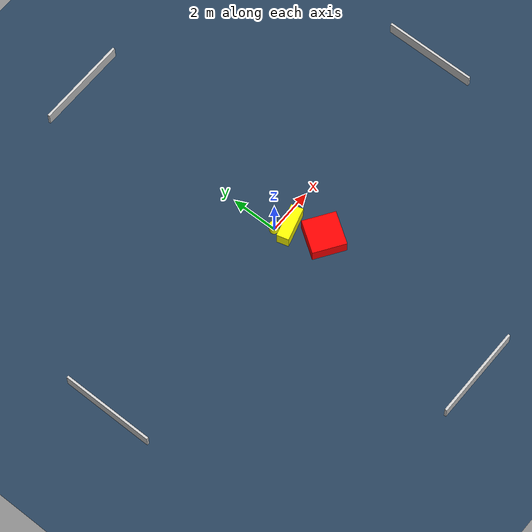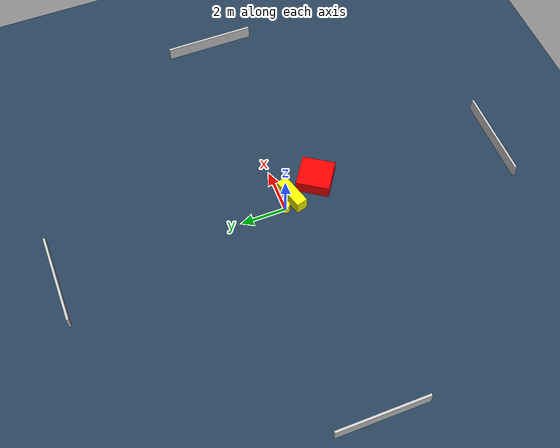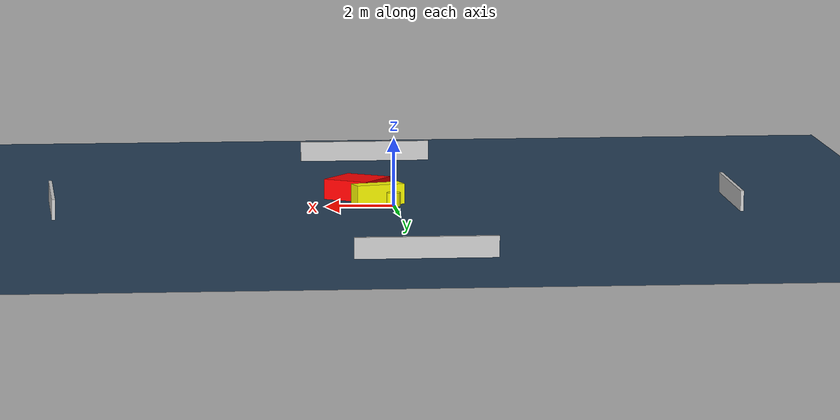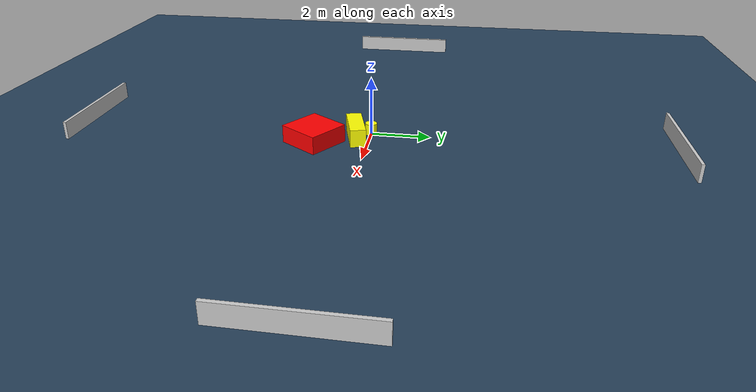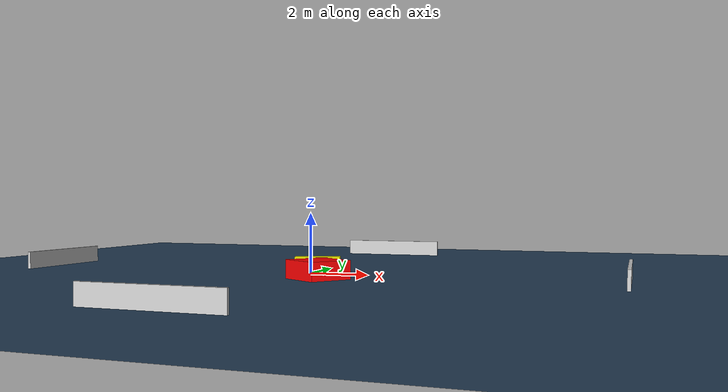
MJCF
<?xml version="1.0" ?>
<mujoco model="generated_environment">
  <option timestep="0.01" integrator="RK4" cone="elliptic"/>
  <default>
    <geom density="1"/>
  </default>
  <asset>
    <texture builtin="gradient" height="3072" name="skybox" rgb1="0.3 0.5 0.7" rgb2="0 0 0" type="skybox" width="512"/>
    <texture builtin="checker" height="300" name="groundplane" rgb1="0.2 0.3 0.4" rgb2="0.1 0.2 0.3" type="2d" width="300"/>
    <material name="groundplane" reflectance="0.2" texrepeat="5 5" texture="groundplane"/>
  </asset>
  <worldbody>
    <light dir="0 0 -1" directional="true" pos="0 0 1.5"/>
    <geom condim="3" friction="0.5 0.005 0.001" material="groundplane" name="floor" pos="0 0 0" size="0 0 0.05" type="plane"/>
    <body name="walls">
      <geom name="wall_1" condim="4" pos="-10.0 0.0 0.3" rgba="0.800000011920929 0.800000011920929 0.800000011920929 1.0" size="0.05 2.0 0.3" type="box"/>
      <geom name="wall_2" condim="4" pos="10.0 0.0 0.3" rgba="0.800000011920929 0.800000011920929 0.800000011920929 1.0" size="0.05 2.0 0.3" type="box"/>
      <geom name="wall_3" condim="4" pos="0.0 -10.0 0.3" rgba="0.800000011920929 0.800000011920929 0.800000011920929 1.0" size="2.0 0.05 0.3" type="box"/>
      <geom name="wall_4" condim="4" pos="0.0 10.0 0.3" rgba="0.800000011920929 0.800000011920929 0.800000011920929 1.0" size="2.0 0.05 0.3" type="box"/>
    </body>
    <body name="robot">
      <joint name="joint_x" type="slide" pos="0 0 0" axis="1 0 0"/>
      <joint name="joint_y" type="slide" pos="0 0 0" axis="0 1 0"/>
      <geom name="robot" type="cylinder" pos="0.0 0.0 0.2" size="0.2 0.2 0.0" mass="5.0" friction="1.0 0.005 0.0001" condim="4" rgba="1.0 1.0 0.0 1.0"/>
    </body>
    <body name="obstacle_1_movable">
      <geom name="obstacle_1_movable" condim="4" pos="0.42247414892408197 -0.4541582781775051 0.3" euler="0 0 285.7945522090073" friction="0.0 0.005 0.001" rgba="1.0 1.0 0.0 1.0" size="0.2584492151456247 0.7370854461818888 0.3" type="box" mass="0.1"/>
      <joint type="free"/>
    </body>
    <body name="obstacle_2_static">
      <geom name="obstacle_2_static" condim="4" pos="0.9214062928789903 -1.7730604303959479 0.3" euler="0 0 146.06809758749876" friction="0.0 0.005 0.001" rgba="1.0 0.0 0.0 1.0" size="0.7157191910654976 0.7341151331512266 0.3" type="box"/>
    </body>
  </worldbody>
  <actuator>
    <motor name="actuator_x" joint="joint_x" gear="1" ctrlrange="-1 1"/>
    <motor name="actuator_y" joint="joint_y" gear="1" ctrlrange="-1 1"/>
  </actuator>
</mujoco>
